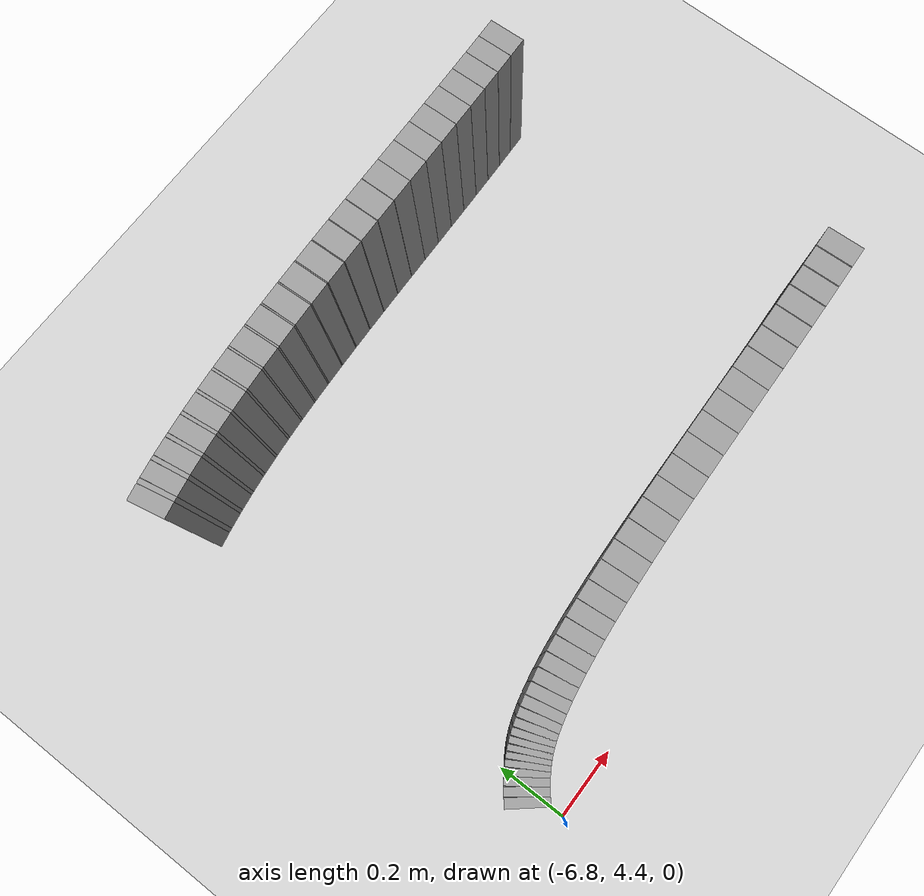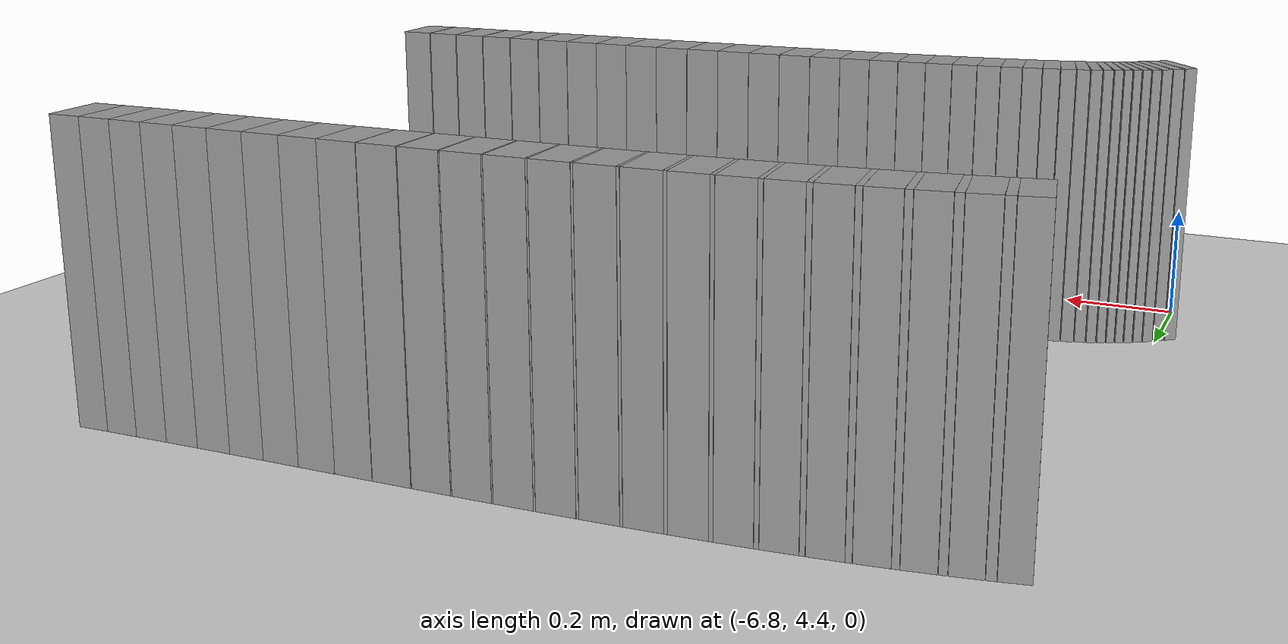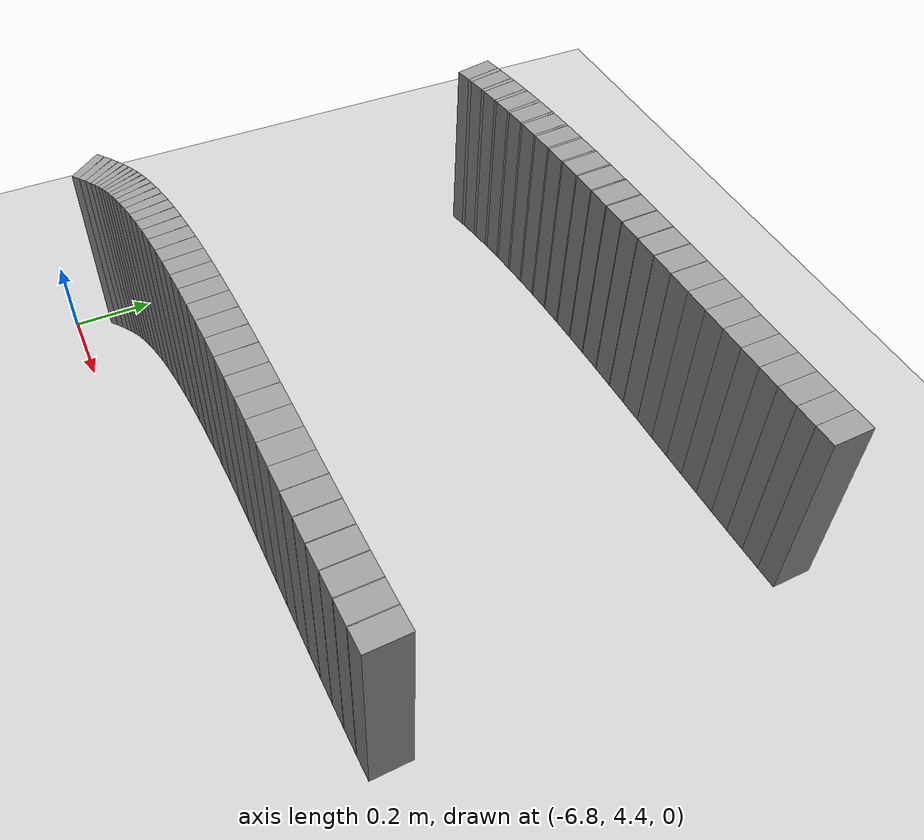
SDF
<sdf version="1.6">
 <world name="default">
  <include><uri>model://ground_plane</uri></include>
  <include><uri>model://sun</uri></include>
  <model name="wall_715_outward">
   <static>true</static>
   <link name="link">
    <collision name="collision">
     <geometry><box><size>0.04427229603714848 0.1 0.5</size></box></geometry>
    </collision>
    <visual name="visual">
     <geometry><box><size>0.04427229603714848 0.1 0.5</size></box></geometry>
     <material>
      <script><uri>file://media/materials/scripts/gazebo.material</uri><name>Gazebo/Gray</name></script>
     </material>
    </visual>
   </link>
   <pose>-6.787782953074644 5.604341420229385 0.25 0 0 0.198122550552777</pose>
  </model>
  <model name="wall_716_outward">
   <static>true</static>
   <link name="link">
    <collision name="collision">
     <geometry><box><size>0.013787778284337651 0.1 0.5</size></box></geometry>
    </collision>
    <visual name="visual">
     <geometry><box><size>0.013787778284337651 0.1 0.5</size></box></geometry>
     <material>
      <script><uri>file://media/materials/scripts/gazebo.material</uri><name>Gazebo/Gray</name></script>
     </material>
    </visual>
   </link>
   <pose>-6.7593027397035135 5.609962051157425 0.25 0 0 0.18433433538181984</pose>
  </model>
  <model name="wall_717_outward">
   <static>true</static>
   <link name="link">
    <collision name="collision">
     <geometry><box><size>0.046217583916477054 0.1 0.5</size></box></geometry>
    </collision>
    <visual name="visual">
     <geometry><box><size>0.046217583916477054 0.1 0.5</size></box></geometry>
     <material>
      <script><uri>file://media/materials/scripts/gazebo.material</uri><name>Gazebo/Gray</name></script>
     </material>
    </visual>
   </link>
   <pose>-6.729752108697234 5.615147684554289 0.25 0 0 0.17054612021079438</pose>
  </model>
  <model name="wall_718_outward">
   <static>true</static>
   <link name="link">
    <collision name="collision">
     <geometry><box><size>0.01206941527639191 0.1 0.5</size></box></geometry>
    </collision>
    <visual name="visual">
     <geometry><box><size>0.01206941527639191 0.1 0.5</size></box></geometry>
     <material>
      <script><uri>file://media/materials/scripts/gazebo.material</uri><name>Gazebo/Gray</name></script>
     </material>
    </visual>
   </link>
   <pose>-6.701019487920215 5.6200220826485054 0.25 0 0 0.15847641188830083</pose>
  </model>
  <model name="wall_719_outward">
   <static>true</static>
   <link name="link">
    <collision name="collision">
     <geometry><box><size>0.04825352106756548 0.1 0.5</size></box></geometry>
    </collision>
    <visual name="visual">
     <geometry><box><size>0.04825352106756548 0.1 0.5</size></box></geometry>
     <material>
      <script><uri>file://media/materials/scripts/gazebo.material</uri><name>Gazebo/Gray</name></script>
     </material>
    </visual>
   </link>
   <pose>-6.671191757510021 5.624494157192439 0.25 0 0 0.14640670356585786</pose>
  </model>
  <model name="wall_720_outward">
   <static>true</static>
   <link name="link">
    <collision name="collision">
     <geometry><box><size>0.010533153233709435 0.1 0.5</size></box></geometry>
    </collision>
    <visual name="visual">
     <geometry><box><size>0.010533153233709435 0.1 0.5</size></box></geometry>
     <material>
      <script><uri>file://media/materials/scripts/gazebo.material</uri><name>Gazebo/Gray</name></script>
     </material>
    </visual>
   </link>
   <pose>-6.642105076319256 5.628727258679284 0.25 0 0 0.13587335555163157</pose>
  </model>
  <model name="wall_721_outward">
   <static>true</static>
   <link name="link">
    <collision name="collision">
     <geometry><box><size>0.05033038747064595 0.1 0.5</size></box></geometry>
    </collision>
    <visual name="visual">
     <geometry><box><size>0.05033038747064595 0.1 0.5</size></box></geometry>
     <material>
      <script><uri>file://media/materials/scripts/gazebo.material</uri><name>Gazebo/Gray</name></script>
     </material>
    </visual>
   </link>
   <pose>-6.611919261274716 5.632586599570962 0.25 0 0 0.12534000753729166</pose>
  </model>
  <model name="wall_722_outward">
   <static>true</static>
   <link name="link">
    <collision name="collision">
     <geometry><box><size>0.009179349550984366 0.1 0.5</size></box></geometry>
    </collision>
    <visual name="visual">
     <geometry><box><size>0.009179349550984366 0.1 0.5</size></box></geometry>
     <material>
      <script><uri>file://media/materials/scripts/gazebo.material</uri><name>Gazebo/Gray</name></script>
     </material>
    </visual>
   </link>
   <pose>-6.582392738238883 5.636264493699098 0.25 0 0 0.11616052907202477</pose>
  </model>
  <model name="wall_723_outward">
   <static>true</static>
   <link name="link">
    <collision name="collision">
     <geometry><box><size>0.052398969915222235 0.1 0.5</size></box></geometry>
    </collision>
    <visual name="visual">
     <geometry><box><size>0.052398969915222235 0.1 0.5</size></box></geometry>
     <material>
      <script><uri>file://media/materials/scripts/gazebo.material</uri><name>Gazebo/Gray</name></script>
     </material>
    </visual>
   </link>
   <pose>-6.55178429145853 5.639593939670187 0.25 0 0 0.10698105060681323</pose>
  </model>
  <model name="wall_724_outward">
   <static>true</static>
   <link name="link">
    <collision name="collision">
     <geometry><box><size>0.007988399667049987 0.1 0.5</size></box></geometry>
    </collision>
    <visual name="visual">
     <geometry><box><size>0.007988399667049987 0.1 0.5</size></box></geometry>
     <material>
      <script><uri>file://media/materials/scripts/gazebo.material</uri><name>Gazebo/Gray</name></script>
     </material>
    </visual>
   </link>
   <pose>-6.521759944225605 5.642786195371538 0.25 0 0 0.09899256597464383</pose>
  </model>
  <model name="wall_725_outward">
   <static>true</static>
   <link name="link">
    <collision name="collision">
     <geometry><box><size>0.05441733789709475 0.1 0.5</size></box></geometry>
    </collision>
    <visual name="visual">
     <geometry><box><size>0.05441733789709475 0.1 0.5</size></box></geometry>
     <material>
      <script><uri>file://media/materials/scripts/gazebo.material</uri><name>Gazebo/Gray</name></script>
     </material>
    </visual>
   </link>
   <pose>-6.490689219967447 5.645653629595952 0.25 0 0 0.09100408134251288</pose>
  </model>
  <model name="wall_726_outward">
   <static>true</static>
   <link name="link">
    <collision name="collision">
     <geometry><box><size>0.006947802980935131 0.1 0.5</size></box></geometry>
    </collision>
    <visual name="visual">
     <geometry><box><size>0.006947802980935131 0.1 0.5</size></box></geometry>
     <material>
      <script><uri>file://media/materials/scripts/gazebo.material</uri><name>Gazebo/Gray</name></script>
     </material>
    </visual>
   </link>
   <pose>-6.460131504504256 5.6484179724985495 0.25 0 0 0.08405622246298476</pose>
  </model>
  <model name="wall_727_outward">
   <static>true</static>
   <link name="link">
    <collision name="collision">
     <geometry><box><size>0.05634449241526085 0.1 0.5</size></box></geometry>
    </collision>
    <visual name="visual">
     <geometry><box><size>0.05634449241526085 0.1 0.5</size></box></geometry>
     <material>
      <script><uri>file://media/materials/scripts/gazebo.material</uri><name>Gazebo/Gray</name></script>
     </material>
    </visual>
   </link>
   <pose>-6.428581332287833 5.650879795588251 0.25 0 0 0.07710836358350967</pose>
  </model>
  <model name="wall_728_outward">
   <static>true</static>
   <link name="link">
    <collision name="collision">
     <geometry><box><size>0.006025924859365051 0.1 0.5</size></box></geometry>
    </collision>
    <visual name="visual">
     <geometry><box><size>0.006025924859365051 0.1 0.5</size></box></geometry>
     <material>
      <script><uri>file://media/materials/scripts/gazebo.material</uri><name>Gazebo/Gray</name></script>
     </material>
    </visual>
   </link>
   <pose>-6.397487442625263 5.653263947673134 0.25 0 0 0.07108240225490636</pose>
  </model>
  <model name="wall_729_outward">
   <static>true</static>
   <link name="link">
    <collision name="collision">
     <geometry><box><size>0.058145021774287216 0.1 0.5</size></box></geometry>
    </collision>
    <visual name="visual">
     <geometry><box><size>0.058145021774287216 0.1 0.5</size></box></geometry>
     <material>
      <script><uri>file://media/materials/scripts/gazebo.material</uri><name>Gazebo/Gray</name></script>
     </material>
    </visual>
   </link>
   <pose>-6.365471078600647 5.65536795619785 0.25 0 0 0.06505644092625447</pose>
  </model>
  <model name="wall_730_outward">
   <static>true</static>
   <link name="link">
    <collision name="collision">
     <geometry><box><size>0.005192283801423653 0.1 0.5</size></box></geometry>
    </collision>
    <visual name="visual">
     <geometry><box><size>0.005192283801423653 0.1 0.5</size></box></geometry>
     <material>
      <script><uri>file://media/materials/scripts/gazebo.material</uri><name>Gazebo/Gray</name></script>
     </material>
    </visual>
   </link>
   <pose>-6.333868577026543 5.657413299399926 0.25 0 0 0.059864133794016575</pose>
  </model>
  <model name="wall_731_outward">
   <static>true</static>
   <link name="link">
    <collision name="collision">
     <geometry><box><size>0.05978669657818748 0.1 0.5</size></box></geometry>
    </collision>
    <visual name="visual">
     <geometry><box><size>0.05978669657818748 0.1 0.5</size></box></geometry>
     <material>
      <script><uri>file://media/materials/scripts/gazebo.material</uri><name>Gazebo/Gray</name></script>
     </material>
    </visual>
   </link>
   <pose>-6.301428401974459 5.65920213228462 0.25 0 0 0.0546718266618442</pose>
  </model>
  <model name="wall_732_outward">
   <static>true</static>
   <link name="link">
    <collision name="collision">
     <geometry><box><size>0.004442531219801007 0.1 0.5</size></box></geometry>
    </collision>
    <visual name="visual">
     <geometry><box><size>0.004442531219801007 0.1 0.5</size></box></geometry>
     <material>
      <script><uri>file://media/materials/scripts/gazebo.material</uri><name>Gazebo/Gray</name></script>
     </material>
    </visual>
   </link>
   <pose>-6.269361254202566 5.66094716785835 0.25 0 0 0.05022928082883893</pose>
  </model>
  <model name="wall_733_outward">
   <static>true</static>
   <link name="link">
    <collision name="collision">
     <geometry><box><size>0.06123896067028324 0.1 0.5</size></box></geometry>
    </collision>
    <visual name="visual">
     <geometry><box><size>0.06123896067028324 0.1 0.5</size></box></geometry>
     <material>
      <script><uri>file://media/materials/scripts/gazebo.material</uri><name>Gazebo/Gray</name></script>
     </material>
    </visual>
   </link>
   <pose>-6.236555399890301 5.662460169752841 0.25 0 0 0.0457867349959278</pose>
  </model>
  <model name="wall_734_outward">
   <static>true</static>
   <link name="link">
    <collision name="collision">
     <geometry><box><size>0.0037468226656922755 0.1 0.5</size></box></geometry>
    </collision>
    <visual name="visual">
     <geometry><box><size>0.0037468226656922755 0.1 0.5</size></box></geometry>
     <material>
      <script><uri>file://media/materials/scripts/gazebo.material</uri><name>Gazebo/Gray</name></script>
     </material>
    </visual>
   </link>
   <pose>-6.204096253585327 5.663940380818144 0.25 0 0 0.042039903563492555</pose>
  </model>
  <model name="wall_735_outward">
   <static>true</static>
   <link name="link">
    <collision name="collision">
     <geometry><box><size>0.0624744215207278 0.1 0.5</size></box></geometry>
    </collision>
    <visual name="visual">
     <geometry><box><size>0.0624744215207278 0.1 0.5</size></box></geometry>
     <material>
      <script><uri>file://media/materials/scripts/gazebo.material</uri><name>Gazebo/Gray</name></script>
     </material>
    </visual>
   </link>
   <pose>-6.171010186428267 5.665214992103784 0.25 0 0 0.03829307213094997</pose>
  </model>
  <model name="wall_736_outward">
   <static>true</static>
   <link name="link">
    <collision name="collision">
     <geometry><box><size>0.0030970406497633973 0.1 0.5</size></box></geometry>
    </collision>
    <visual name="visual">
     <geometry><box><size>0.0030970406497633973 0.1 0.5</size></box></geometry>
     <material>
      <script><uri>file://media/materials/scripts/gazebo.material</uri><name>Gazebo/Gray</name></script>
     </material>
    </visual>
   </link>
   <pose>-6.13824831405668 5.6664653590651834 0.25 0 0 0.03519602653036827</pose>
  </model>
  <model name="wall_737_outward">
   <static>true</static>
   <link name="link">
    <collision name="collision">
     <geometry><box><size>0.06347094053283751 0.1 0.5</size></box></geometry>
    </collision>
    <visual name="visual">
     <geometry><box><size>0.06347094053283751 0.1 0.5</size></box></geometry>
     <material>
      <script><uri>file://media/materials/scripts/gazebo.material</uri><name>Gazebo/Gray</name></script>
     </material>
    </visual>
   </link>
   <pose>-6.104981630320221 5.6675383509085036 0.25 0 0 0.03209898092945859</pose>
  </model>
  <model name="wall_738_outward">
   <static>true</static>
   <link name="link">
    <collision name="collision">
     <geometry><box><size>0.0024808707593398996 0.1 0.5</size></box></geometry>
    </collision>
    <visual name="visual">
     <geometry><box><size>0.0024808707593398996 0.1 0.5</size></box></geometry>
     <material>
      <script><uri>file://media/materials/scripts/gazebo.material</uri><name>Gazebo/Gray</name></script>
     </material>
    </visual>
   </link>
   <pose>-6.072022616540458 5.6685935862184476 0.25 0 0 0.029618107625158673</pose>
  </model>
  <model name="wall_739_outward">
   <static>true</static>
   <link name="link">
    <collision name="collision">
     <geometry><box><size>0.06420774419207387 0.1 0.5</size></box></geometry>
    </collision>
    <visual name="visual">
     <geometry><box><size>0.06420774419207387 0.1 0.5</size></box></geometry>
     <material>
      <script><uri>file://media/materials/scripts/gazebo.material</uri><name>Gazebo/Gray</name></script>
     </material>
    </visual>
   </link>
   <pose>-6.038690673493559 5.6695014235685655 0.25 0 0 0.027137234321077647</pose>
  </model>
  <model name="wall_740_outward">
   <static>true</static>
   <link name="link">
    <collision name="collision">
     <geometry><box><size>0.0018974911223932885 0.1 0.5</size></box></geometry>
    </collision>
    <visual name="visual">
     <geometry><box><size>0.0018974911223932885 0.1 0.5</size></box></geometry>
     <material>
      <script><uri>file://media/materials/scripts/gazebo.material</uri><name>Gazebo/Gray</name></script>
     </material>
    </visual>
   </link>
   <pose>-6.00565017841048 5.670396470492232 0.25 0 0 0.02523974205997937</pose>
  </model>
  <model name="wall_741_outward">
   <static>true</static>
   <link name="link">
    <collision name="collision">
     <geometry><box><size>0.06467200625841027 0.1 0.5</size></box></geometry>
    </collision>
    <visual name="visual">
     <geometry><box><size>0.06467200625841027 0.1 0.5</size></box></geometry>
     <material>
      <script><uri>file://media/materials/scripts/gazebo.material</uri><name>Gazebo/Gray</name></script>
     </material>
    </visual>
   </link>
   <pose>-5.972374540808113 5.671175140564496 0.25 0 0 0.023342249798999126</pose>
  </model>
  <model name="wall_742_outward">
   <static>true</static>
   <link name="link">
    <collision name="collision">
     <geometry><box><size>0.0013407539265913114 0.1 0.5</size></box></geometry>
    </collision>
    <visual name="visual">
     <geometry><box><size>0.0013407539265913114 0.1 0.5</size></box></geometry>
     <material>
      <script><uri>file://media/materials/scripts/gazebo.material</uri><name>Gazebo/Gray</name></script>
     </material>
    </visual>
   </link>
   <pose>-5.939377131869817 5.6719446151917 0.25 0 0 0.022001495470720913</pose>
  </model>
  <model name="wall_743_outward">
   <static>true</static>
   <link name="link">
    <collision name="collision">
     <geometry><box><size>0.06485729441659203 0.1 0.5</size></box></geometry>
    </collision>
    <visual name="visual">
     <geometry><box><size>0.06485729441659203 0.1 0.5</size></box></geometry>
     <material>
      <script><uri>file://media/materials/scripts/gazebo.material</uri><name>Gazebo/Gray</name></script>
     </material>
    </visual>
   </link>
   <pose>-5.906285191045859 5.672629315517379 0.25 0 0 0.020660741142426546</pose>
  </model>
  <model name="wall_744_outward">
   <static>true</static>
   <link name="link">
    <collision name="collision">
     <geometry><box><size>0.00080312846641992 0.1 0.5</size></box></geometry>
    </collision>
    <visual name="visual">
     <geometry><box><size>0.00080312846641992 0.1 0.5</size></box></geometry>
     <material>
      <script><uri>file://media/materials/scripts/gazebo.material</uri><name>Gazebo/Gray</name></script>
     </material>
    </visual>
   </link>
   <pose>-5.873461979876011 5.673307241320165 0.25 0 0 0.0198576125901557</pose>
  </model>
  <model name="wall_745_outward">
   <static>true</static>
   <link name="link">
    <collision name="collision">
     <geometry><box><size>0.06476545336809227 0.1 0.5</size></box></geometry>
    </collision>
    <visual name="visual">
     <geometry><box><size>0.06476545336809227 0.1 0.5</size></box></geometry>
     <material>
      <script><uri>file://media/materials/scripts/gazebo.material</uri><name>Gazebo/Gray</name></script>
     </material>
    </visual>
   </link>
   <pose>-5.8406836466043766 5.6739322137142025 0.25 0 0 0.019054484036909573</pose>
  </model>
  <model name="wall_746_outward">
   <static>true</static>
   <link name="link">
    <collision name="collision">
     <geometry><box><size>0.06459310264427841 0.1 0.5</size></box></geometry>
    </collision>
    <visual name="visual">
     <geometry><box><size>0.06459310264427841 0.1 0.5</size></box></geometry>
     <material>
      <script><uri>file://media/materials/scripts/gazebo.material</uri><name>Gazebo/Gray</name></script>
     </material>
    </visual>
   </link>
   <pose>-5.776015764338239 5.675146160459743 0.25 0 0 0.01848438625145726</pose>
  </model>
  <model name="wall_747_outward">
   <static>true</static>
   <link name="link">
    <collision name="collision">
     <geometry><box><size>0.06337656750366784 0.1 0.5</size></box></geometry>
    </collision>
    <visual name="visual">
     <geometry><box><size>0.06337656750366784 0.1 0.5</size></box></geometry>
     <material>
      <script><uri>file://media/materials/scripts/gazebo.material</uri><name>Gazebo/Gray</name></script>
     </material>
    </visual>
   </link>
   <pose>-5.712042101851692 5.6763417593181975 0.25 0 0 0.018892993526199914</pose>
  </model>
  <model name="wall_748_outward">
   <static>true</static>
   <link name="link">
    <collision name="collision">
     <geometry><box><size>0.062133759978101576 0.1 0.5</size></box></geometry>
    </collision>
    <visual name="visual">
     <geometry><box><size>0.062133759978101576 0.1 0.5</size></box></geometry>
     <material>
      <script><uri>file://media/materials/scripts/gazebo.material</uri><name>Gazebo/Gray</name></script>
     </material>
    </visual>
   </link>
   <pose>-5.649298950762556 5.67756887215067 0.25 0 0 0.02023070164508726</pose>
  </model>
  <model name="wall_749_outward">
   <static>true</static>
   <link name="link">
    <collision name="collision">
     <geometry><box><size>0.06077717741691217 0.1 0.5</size></box></geometry>
    </collision>
    <visual name="visual">
     <geometry><box><size>0.06077717741691217 0.1 0.5</size></box></geometry>
     <material>
      <script><uri>file://media/materials/scripts/gazebo.material</uri><name>Gazebo/Gray</name></script>
     </material>
    </visual>
   </link>
   <pose>-5.587857464327748 5.678878042350173 0.25 0 0 0.022402002161792868</pose>
  </model>
  <model name="wall_750_outward">
   <static>true</static>
   <link name="link">
    <collision name="collision">
     <geometry><box><size>0.0593644005096636 0.1 0.5</size></box></geometry>
    </collision>
    <visual name="visual">
     <geometry><box><size>0.0593644005096636 0.1 0.5</size></box></geometry>
     <material>
      <script><uri>file://media/materials/scripts/gazebo.material</uri><name>Gazebo/Gray</name></script>
     </material>
    </visual>
   </link>
   <pose>-5.527803801910203 5.680309728172557 0.25 0 0 0.0253033018881677</pose>
  </model>
  <model name="wall_751_outward">
   <static>true</static>
   <link name="link">
    <collision name="collision">
     <geometry><box><size>0.05797755895982086 0.1 0.5</size></box></geometry>
    </collision>
    <visual name="visual">
     <geometry><box><size>0.05797755895982086 0.1 0.5</size></box></geometry>
     <material>
      <script><uri>file://media/materials/scripts/gazebo.material</uri><name>Gazebo/Gray</name></script>
     </material>
    </visual>
   </link>
   <pose>-5.46915435480477 5.6818958010504605 0.25 0 0 0.028811523242423698</pose>
  </model>
  <model name="wall_752_outward">
   <static>true</static>
   <link name="link">
    <collision name="collision">
     <geometry><box><size>0.05669731627469313 0.1 0.5</size></box></geometry>
    </collision>
    <visual name="visual">
     <geometry><box><size>0.05669731627469313 0.1 0.5</size></box></geometry>
     <material>
      <script><uri>file://media/materials/scripts/gazebo.material</uri><name>Gazebo/Gray</name></script>
     </material>
    </visual>
   </link>
   <pose>-5.411844113083832 5.683658030691181 0.25 0 0 0.032710530634604974</pose>
  </model>
  <model name="wall_753_outward">
   <static>true</static>
   <link name="link">
    <collision name="collision">
     <geometry><box><size>0.055587608800951524 0.1 0.5</size></box></geometry>
    </collision>
    <visual name="visual">
     <geometry><box><size>0.055587608800951524 0.1 0.5</size></box></geometry>
     <material>
      <script><uri>file://media/materials/scripts/gazebo.material</uri><name>Gazebo/Gray</name></script>
     </material>
    </visual>
   </link>
   <pose>-5.355735606155399 5.685607015584503 0.25 0 0 0.036773697105748085</pose>
  </model>
  <model name="wall_436_inward">
   <static>true</static>
   <link name="link">
    <collision name="collision">
     <geometry><box><size>0.023033971195744764 0.1 0.5</size></box></geometry>
    </collision>
    <visual name="visual">
     <geometry><box><size>0.023033971195744764 0.1 0.5</size></box></geometry>
     <material>
      <script><uri>file://media/materials/scripts/gazebo.material</uri><name>Gazebo/Gray</name></script>
     </material>
    </visual>
   </link>
   <pose>-6.791422721273946 4.53275799636075 0.25 0 0 0.6940031108437864</pose>
  </model>
  <model name="wall_437_inward">
   <static>true</static>
   <link name="link">
    <collision name="collision">
     <geometry><box><size>0.020742308365236817 0.1 0.5</size></box></geometry>
    </collision>
    <visual name="visual">
     <geometry><box><size>0.020742308365236817 0.1 0.5</size></box></geometry>
     <material>
      <script><uri>file://media/materials/scripts/gazebo.material</uri><name>Gazebo/Gray</name></script>
     </material>
    </visual>
   </link>
   <pose>-6.774355513484021 4.5464559784625935 0.25 0 0 0.6566800989822641</pose>
  </model>
  <model name="wall_438_inward">
   <static>true</static>
   <link name="link">
    <collision name="collision">
     <geometry><box><size>0.01847377192516463 0.1 0.5</size></box></geometry>
    </collision>
    <visual name="visual">
     <geometry><box><size>0.01847377192516463 0.1 0.5</size></box></geometry>
     <material>
      <script><uri>file://media/materials/scripts/gazebo.material</uri><name>Gazebo/Gray</name></script>
     </material>
    </visual>
   </link>
   <pose>-6.758607382185916 4.558131617623058 0.25 0 0 0.6169690517355636</pose>
  </model>
  <model name="wall_439_inward">
   <static>true</static>
   <link name="link">
    <collision name="collision">
     <geometry><box><size>0.01643014109773876 0.1 0.5</size></box></geometry>
    </collision>
    <visual name="visual">
     <geometry><box><size>0.01643014109773876 0.1 0.5</size></box></geometry>
     <material>
      <script><uri>file://media/materials/scripts/gazebo.material</uri><name>Gazebo/Gray</name></script>
     </material>
    </visual>
   </link>
   <pose>-6.744178317387382 4.567941696903582 0.25 0 0 0.5747524104182197</pose>
  </model>
  <model name="wall_440_inward">
   <static>true</static>
   <link name="link">
    <collision name="collision">
     <geometry><box><size>0.014852313597868058 0.1 0.5</size></box></geometry>
    </collision>
    <visual name="visual">
     <geometry><box><size>0.014852313597868058 0.1 0.5</size></box></geometry>
     <material>
      <script><uri>file://media/materials/scripts/gazebo.material</uri><name>Gazebo/Gray</name></script>
     </material>
    </visual>
   </link>
   <pose>-6.730876731292756 4.576163309925279 0.25 0 0 0.5302355298545512</pose>
  </model>
  <model name="wall_441_inward">
   <static>true</static>
   <link name="link">
    <collision name="collision">
     <geometry><box><size>0.013970199412113728 0.1 0.5</size></box></geometry>
    </collision>
    <visual name="visual">
     <geometry><box><size>0.013970199412113728 0.1 0.5</size></box></geometry>
     <material>
      <script><uri>file://media/materials/scripts/gazebo.material</uri><name>Gazebo/Gray</name></script>
     </material>
    </visual>
   </link>
   <pose>-6.718287622342446 4.583169592255391 0.25 0 0 0.48404411498353633</pose>
  </model>
  <model name="wall_442_inward">
   <static>true</static>
   <link name="link">
    <collision name="collision">
     <geometry><box><size>0.01394453255703199 0.1 0.5</size></box></geometry>
    </collision>
    <visual name="visual">
     <geometry><box><size>0.01394453255703199 0.1 0.5</size></box></geometry>
     <material>
      <script><uri>file://media/materials/scripts/gazebo.material</uri><name>Gazebo/Gray</name></script>
     </material>
    </visual>
   </link>
   <pose>-6.705788292124403 4.58937181948028 0.25 0 0 0.43712636723239795</pose>
  </model>
  <model name="wall_443_inward">
   <static>true</static>
   <link name="link">
    <collision name="collision">
     <geometry><box><size>0.014851098218611001 0.1 0.5</size></box></geometry>
    </collision>
    <visual name="visual">
     <geometry><box><size>0.014851098218611001 0.1 0.5</size></box></geometry>
     <material>
      <script><uri>file://media/materials/scripts/gazebo.material</uri><name>Gazebo/Gray</name></script>
     </material>
    </visual>
   </link>
   <pose>-6.6926054276015075 4.5951508545825 0.25 0 0 0.39062669869546635</pose>
  </model>
  <model name="wall_444_inward">
   <static>true</static>
   <link name="link">
    <collision name="collision">
     <geometry><box><size>0.01664969024967799 0.1 0.5</size></box></geometry>
    </collision>
    <visual name="visual">
     <geometry><box><size>0.01664969024967799 0.1 0.5</size></box></geometry>
     <material>
      <script><uri>file://media/materials/scripts/gazebo.material</uri><name>Gazebo/Gray</name></script>
     </material>
    </visual>
   </link>
   <pose>-6.677907025104371 4.6007995152279335 0.25 0 0 0.3457422645974469</pose>
  </model>
  <model name="wall_445_inward">
   <static>true</static>
   <link name="link">
    <collision name="collision">
     <geometry><box><size>0.019211035893590408 0.1 0.5</size></box></geometry>
    </collision>
    <visual name="visual">
     <geometry><box><size>0.019211035893590408 0.1 0.5</size></box></geometry>
     <material>
      <script><uri>file://media/materials/scripts/gazebo.material</uri><name>Gazebo/Gray</name></script>
     </material>
    </visual>
   </link>
   <pose>-6.660908209363047 4.606491202469996 0.25 0 0 0.3034686879627299</pose>
  </model>
  <model name="wall_446_inward">
   <static>true</static>
   <link name="link">
    <collision name="collision">
     <geometry><box><size>0.022349276903974535 0.1 0.5</size></box></geometry>
    </collision>
    <visual name="visual">
     <geometry><box><size>0.022349276903974535 0.1 0.5</size></box></geometry>
     <material>
      <script><uri>file://media/materials/scripts/gazebo.material</uri><name>Gazebo/Gray</name></script>
     </material>
    </visual>
   </link>
   <pose>-6.640955768012656 4.61228365638817 0.25 0 0 0.2645618635066466</pose>
  </model>
  <model name="wall_447_inward">
   <static>true</static>
   <link name="link">
    <collision name="collision">
     <geometry><box><size>0.02585957115728218 0.1 0.5</size></box></geometry>
    </collision>
    <visual name="visual">
     <geometry><box><size>0.02585957115728218 0.1 0.5</size></box></geometry>
     <material>
      <script><uri>file://media/materials/scripts/gazebo.material</uri><name>Gazebo/Gray</name></script>
     </material>
    </visual>
   </link>
   <pose>-6.617578889734212 4.6181459336832305 0.25 0 0 0.22940912703244903</pose>
  </model>
  <model name="wall_448_inward">
   <static>true</static>
   <link name="link">
    <collision name="collision">
     <geometry><box><size>0.029555469327267034 0.1 0.5</size></box></geometry>
    </collision>
    <visual name="visual">
     <geometry><box><size>0.029555469327267034 0.1 0.5</size></box></geometry>
     <material>
      <script><uri>file://media/materials/scripts/gazebo.material</uri><name>Gazebo/Gray</name></script>
     </material>
    </visual>
   </link>
   <pose>-6.590499202220055 4.623994881079555 0.25 0 0 0.19812255055276615</pose>
  </model>
  <model name="wall_449_inward">
   <static>true</static>
   <link name="link">
    <collision name="collision">
     <geometry><box><size>0.03328789218045506 0.1 0.5</size></box></geometry>
    </collision>
    <visual name="visual">
     <geometry><box><size>0.03328789218045506 0.1 0.5</size></box></geometry>
     <material>
      <script><uri>file://media/materials/scripts/gazebo.material</uri><name>Gazebo/Gray</name></script>
     </material>
    </visual>
   </link>
   <pose>-6.559608072454681 4.629728387213296 0.25 0 0 0.17054612021080456</pose>
  </model>
  <model name="wall_450_inward">
   <static>true</static>
   <link name="link">
    <collision name="collision">
     <geometry><box><size>0.03695150504356176 0.1 0.5</size></box></geometry>
    </collision>
    <visual name="visual">
     <geometry><box><size>0.03695150504356176 0.1 0.5</size></box></geometry>
     <material>
      <script><uri>file://media/materials/scripts/gazebo.material</uri><name>Gazebo/Gray</name></script>
     </material>
    </visual>
   </link>
   <pose>-6.52492750016817 4.635248528146157 0.25 0 0 0.14640670356584948</pose>
  </model>
  <model name="wall_451_inward">
   <static>true</static>
   <link name="link">
    <collision name="collision">
     <geometry><box><size>0.04047365052148544 0.1 0.5</size></box></geometry>
    </collision>
    <visual name="visual">
     <geometry><box><size>0.04047365052148544 0.1 0.5</size></box></geometry>
     <material>
      <script><uri>file://media/materials/scripts/gazebo.material</uri><name>Gazebo/Gray</name></script>
     </material>
    </visual>
   </link>
   <pose>-6.486571335555055 4.640473696671171 0.25 0 0 0.12534000753729896</pose>
  </model>
  <model name="wall_452_inward">
   <static>true</static>
   <link name="link">
    <collision name="collision">
     <geometry><box><size>0.04381477447983942 0.1 0.5</size></box></geometry>
    </collision>
    <visual name="visual">
     <geometry><box><size>0.04381477447983942 0.1 0.5</size></box></geometry>
     <material>
      <script><uri>file://media/materials/scripts/gazebo.material</uri><name>Gazebo/Gray</name></script>
     </material>
    </visual>
   </link>
   <pose>-6.44471112140894 4.64534275162827 0.25 0 0 0.10698105060682006</pose>
  </model>
  <model name="wall_453_inward">
   <static>true</static>
   <link name="link">
    <collision name="collision">
     <geometry><box><size>0.04694902527395211 0.1 0.5</size></box></geometry>
    </collision>
    <visual name="visual">
     <geometry><box><size>0.04694902527395211 0.1 0.5</size></box></geometry>
     <material>
      <script><uri>file://media/materials/scripts/gazebo.material</uri><name>Gazebo/Gray</name></script>
     </material>
    </visual>
   </link>
   <pose>-6.399551604306245 4.649815287945799 0.25 0 0 0.09100408134251727</pose>
  </model>
  <model name="wall_454_inward">
   <static>true</static>
   <link name="link">
    <collision name="collision">
     <geometry><box><size>0.049857489941531156 0.1 0.5</size></box></geometry>
    </collision>
    <visual name="visual">
     <geometry><box><size>0.049857489941531156 0.1 0.5</size></box></geometry>
     <material>
      <script><uri>file://media/materials/scripts/gazebo.material</uri><name>Gazebo/Gray</name></script>
     </material>
    </visual>
   </link>
   <pose>-6.3513195572738415 4.653868927420502 0.25 0 0 0.0771083635834944</pose>
  </model>
  <model name="wall_455_inward">
   <static>true</static>
   <link name="link">
    <collision name="collision">
     <geometry><box><size>0.052535827742976965 0.1 0.5</size></box></geometry>
    </collision>
    <visual name="visual">
     <geometry><box><size>0.052535827742976965 0.1 0.5</size></box></geometry>
     <material>
      <script><uri>file://media/materials/scripts/gazebo.material</uri><name>Gazebo/Gray</name></script>
     </material>
    </visual>
   </link>
   <pose>-6.300252538910996 4.657496929702093 0.25 0 0 0.06505644092626817</pose>
  </model>
  <model name="wall_456_inward">
   <static>true</static>
   <link name="link">
    <collision name="collision">
     <geometry><box><size>0.05496923215126055 0.1 0.5</size></box></geometry>
    </collision>
    <visual name="visual">
     <geometry><box><size>0.05496923215126055 0.1 0.5</size></box></geometry>
     <material>
      <script><uri>file://media/materials/scripts/gazebo.material</uri><name>Gazebo/Gray</name></script>
     </material>
    </visual>
   </link>
   <pose>-6.246596642386196 4.66070650721861 0.25 0 0 0.05467182666183468</pose>
  </model>
  <model name="wall_457_inward">
   <static>true</static>
   <link name="link">
    <collision name="collision">
     <geometry><box><size>0.057144248657370354 0.1 0.5</size></box></geometry>
    </collision>
    <visual name="visual">
     <geometry><box><size>0.057144248657370354 0.1 0.5</size></box></geometry>
     <material>
      <script><uri>file://media/materials/scripts/gazebo.material</uri><name>Gazebo/Gray</name></script>
     </material>
    </visual>
   </link>
   <pose>-6.190610912056304 4.663516160165795 0.25 0 0 0.045786734995937724</pose>
  </model>
  <model name="wall_458_inward">
   <static>true</static>
   <link name="link">
    <collision name="collision">
     <geometry><box><size>0.05905246928620108 0.1 0.5</size></box></geometry>
    </collision>
    <visual name="visual">
     <geometry><box><size>0.05905246928620108 0.1 0.5</size></box></geometry>
     <material>
      <script><uri>file://media/materials/scripts/gazebo.material</uri><name>Gazebo/Gray</name></script>
     </material>
    </visual>
   </link>
   <pose>-6.132564142902215 4.665954301329518 0.25 0 0 0.03829307213094603</pose>
  </model>
  <model name="wall_459_inward">
   <static>true</static>
   <link name="link">
    <collision name="collision">
     <geometry><box><size>0.060681973584644465 0.1 0.5</size></box></geometry>
    </collision>
    <visual name="visual">
     <geometry><box><size>0.060681973584644465 0.1 0.5</size></box></geometry>
     <material>
      <script><uri>file://media/materials/scripts/gazebo.material</uri><name>Gazebo/Gray</name></script>
     </material>
    </visual>
   </link>
   <pose>-6.0727341963506145 4.668058422779872 0.25 0 0 0.032098980929462485</pose>
  </model>
  <model name="wall_460_inward">
   <static>true</static>
   <link name="link">
    <collision name="collision">
     <geometry><box><size>0.06201855772592783 0.1 0.5</size></box></geometry>
    </collision>
    <visual name="visual">
     <geometry><box><size>0.06201855772592783 0.1 0.5</size></box></geometry>
     <material>
      <script><uri>file://media/materials/scripts/gazebo.material</uri><name>Gazebo/Gray</name></script>
     </material>
    </visual>
   </link>
   <pose>-6.011410977561832 4.669873573085738 0.25 0 0 0.0271372343210715</pose>
  </model>
  <model name="wall_461_inward">
   <static>true</static>
   <link name="link">
    <collision name="collision">
     <geometry><box><size>0.06305288142337082 0.1 0.5</size></box></geometry>
    </collision>
    <visual name="visual">
     <geometry><box><size>0.06305288142337082 0.1 0.5</size></box></geometry>
     <material>
      <script><uri>file://media/materials/scripts/gazebo.material</uri><name>Gazebo/Gray</name></script>
     </material>
    </visual>
   </link>
   <pose>-5.948895263728279 4.6714508071004 0.25 0 0 0.02334224979899802</pose>
  </model>
  <model name="wall_462_inward">
   <static>true</static>
   <link name="link">
    <collision name="collision">
     <geometry><box><size>0.0637853524877965 0.1 0.5</size></box></geometry>
    </collision>
    <visual name="visual">
     <geometry><box><size>0.0637853524877965 0.1 0.5</size></box></geometry>
     <material>
      <script><uri>file://media/materials/scripts/gazebo.material</uri><name>Gazebo/Gray</name></script>
     </material>
    </visual>
   </link>
   <pose>-5.8854915418518505 4.672845517779923 0.25 0 0 0.020660741142433842</pose>
  </model>
  <model name="wall_463_inward">
   <static>true</static>
   <link name="link">
    <collision name="collision">
     <geometry><box><size>0.06422104868129556 0.1 0.5</size></box></geometry>
    </collision>
    <visual name="visual">
     <geometry><box><size>0.06422104868129556 0.1 0.5</size></box></geometry>
     <material>
      <script><uri>file://media/materials/scripts/gazebo.material</uri><name>Gazebo/Gray</name></script>
     </material>
    </visual>
   </link>
   <pose>-5.821500977039964 4.674116209680003 0.25 0 0 0.01905448403689674</pose>
  </model>
  <model name="wall_464_inward">
   <static>true</static>
   <link name="link">
    <collision name="collision">
     <geometry><box><size>0.06447198476804078 0.1 0.5</size></box></geometry>
    </collision>
    <visual name="visual">
     <geometry><box><size>0.06447198476804078 0.1 0.5</size></box></geometry>
     <material>
      <script><uri>file://media/materials/scripts/gazebo.material</uri><name>Gazebo/Gray</name></script>
     </material>
    </visual>
   </link>
   <pose>-5.757165795932073 4.6753238310055565 0.25 0 0 0.018483774173486876</pose>
  </model>
  <model name="wall_465_inward">
   <static>true</static>
   <link name="link">
    <collision name="collision">
     <geometry><box><size>0.06381346227815973 0.1 0.5</size></box></geometry>
    </collision>
    <visual name="visual">
     <geometry><box><size>0.06381346227815973 0.1 0.5</size></box></geometry>
     <material>
      <script><uri>file://media/materials/scripts/gazebo.material</uri><name>Gazebo/Gray</name></script>
     </material>
    </visual>
   </link>
   <pose>-5.693034273272056 4.676522417684932 0.25 0 0 0.01889299352619353</pose>
  </model>
  <model name="wall_466_inward">
   <static>true</static>
   <link name="link">
    <collision name="collision">
     <geometry><box><size>0.0006688540095785354 0.1 0.5</size></box></geometry>
    </collision>
    <visual name="visual">
     <geometry><box><size>0.0006688540095785354 0.1 0.5</size></box></geometry>
     <material>
      <script><uri>file://media/materials/scripts/gazebo.material</uri><name>Gazebo/Gray</name></script>
     </material>
    </visual>
   </link>
   <pose>-5.660798873420999 4.677131737081387 0.25 0 0 0.019561847585263508</pose>
  </model>
  <model name="wall_467_inward">
   <static>true</static>
   <link name="link">
    <collision name="collision">
     <geometry><box><size>0.06301101240005838 0.1 0.5</size></box></geometry>
    </collision>
    <visual name="visual">
     <geometry><box><size>0.06301101240005838 0.1 0.5</size></box></geometry>
     <material>
      <script><uri>file://media/materials/scripts/gazebo.material</uri><name>Gazebo/Gray</name></script>
     </material>
    </visual>
   </link>
   <pose>-5.628965451288243 4.6777756136934086 0.25 0 0 0.020230701645090325</pose>
  </model>
  <model name="wall_468_inward">
   <static>true</static>
   <link name="link">
    <collision name="collision">
     <geometry><box><size>0.0010856500450853238 0.1 0.5</size></box></geometry>
    </collision>
    <visual name="visual">
     <geometry><box><size>0.0010856500450853238 0.1 0.5</size></box></geometry>
     <material>
      <script><uri>file://media/materials/scripts/gazebo.material</uri><name>Gazebo/Gray</name></script>
     </material>
    </visual>
   </link>
   <pose>-5.5969236904744815 4.678424518885493 0.25 0 0 0.021316351903217495</pose>
  </model>
  <model name="wall_469_inward">
   <static>true</static>
   <link name="link">
    <collision name="collision">
     <geometry><box><size>0.0620453281995741 0.1 0.5</size></box></geometry>
    </collision>
    <visual name="visual">
     <geometry><box><size>0.0620453281995741 0.1 0.5</size></box></geometry>
     <material>
      <script><uri>file://media/materials/scripts/gazebo.material</uri><name>Gazebo/Gray</name></script>
     </material>
    </visual>
   </link>
   <pose>-5.565366108705566 4.679131000719717 0.25 0 0 0.022402002161790117</pose>
  </model>
  <model name="wall_470_inward">
   <static>true</static>
   <link name="link">
    <collision name="collision">
     <geometry><box><size>0.001450649354401391 0.1 0.5</size></box></geometry>
    </collision>
    <visual name="visual">
     <geometry><box><size>0.001450649354401391 0.1 0.5</size></box></geometry>
     <material>
      <script><uri>file://media/materials/scripts/gazebo.material</uri><name>Gazebo/Gray</name></script>
     </material>
    </visual>
   </link>
   <pose>-5.533626110286981 4.6798432116576265 0.25 0 0 0.023852652025077296</pose>
  </model>
  <model name="wall_471_inward">
   <static>true</static>
   <link name="link">
    <collision name="collision">
     <geometry><box><size>0.06096678218809616 0.1 0.5</size></box></geometry>
    </collision>
    <visual name="visual">
     <geometry><box><size>0.06096678218809616 0.1 0.5</size></box></geometry>
     <material>
      <script><uri>file://media/materials/scripts/gazebo.material</uri><name>Gazebo/Gray</name></script>
     </material>
    </visual>
   </link>
   <pose>-5.502427358925254 4.680631759076013 0.25 0 0 0.02530330188816904</pose>
  </model>
  <model name="wall_472_inward">
   <static>true</static>
   <link name="link">
    <collision name="collision">
     <geometry><box><size>0.001754109777591732 0.1 0.5</size></box></geometry>
    </collision>
    <visual name="visual">
     <geometry><box><size>0.001754109777591732 0.1 0.5</size></box></geometry>
     <material>
      <script><uri>file://media/materials/scripts/gazebo.material</uri><name>Gazebo/Gray</name></script>
     </material>
    </visual>
   </link>
   <pose>-5.47107699205326 4.681426735158281 0.25 0 0 0.02705741256550503</pose>
  </model>
  <model name="wall_473_inward">
   <static>true</static>
   <link name="link">
    <collision name="collision">
     <geometry><box><size>0.059829368280985416 0.1 0.5</size></box></geometry>
    </collision>
    <visual name="visual">
     <geometry><box><size>0.059829368280985416 0.1 0.5</size></box></geometry>
     <material>
      <script><uri>file://media/materials/scripts/gazebo.material</uri><name>Gazebo/Gray</name></script>
     </material>
    </visual>
   </link>
   <pose>-5.440297989340588 4.682312231478429 0.25 0 0 0.028811523242428555</pose>
  </model>
  <model name="wall_474_inward">
   <static>true</static>
   <link name="link">
    <collision name="collision">
     <geometry><box><size>0.001949502461215902 0.1 0.5</size></box></geometry>
    </collision>
    <visual name="visual">
     <geometry><box><size>0.001949502461215902 0.1 0.5</size></box></geometry>
     <material>
      <script><uri>file://media/materials/scripts/gazebo.material</uri><name>Gazebo/Gray</name></script>
     </material>
    </visual>
   </link>
   <pose>-5.409421430396499 4.683203979478424 0.25 0 0 0.030761026938427867</pose>
  </model>
  <model name="wall_475_inward">
   <static>true</static>
   <link name="link">
    <collision name="collision">
     <geometry><box><size>0.058687862372766686 0.1 0.5</size></box></geometry>
    </collision>
    <visual name="visual">
     <geometry><box><size>0.058687862372766686 0.1 0.5</size></box></geometry>
     <material>
      <script><uri>file://media/materials/scripts/gazebo.material</uri><name>Gazebo/Gray</name></script>
     </material>
    </visual>
   </link>
   <pose>-5.3791189064104525 4.6841936434970926 0.25 0 0 0.032710530634598445</pose>
  </model>
  <model name="wall_476_inward">
   <static>true</static>
   <link name="link">
    <collision name="collision">
     <geometry><box><size>0.002031581838072251 0.1 0.5</size></box></geometry>
    </collision>
    <visual name="visual">
     <geometry><box><size>0.002031581838072251 0.1 0.5</size></box></geometry>
     <material>
      <script><uri>file://media/materials/scripts/gazebo.material</uri><name>Gazebo/Gray</name></script>
     </material>
    </visual>
   </link>
   <pose>-5.348775494573173 4.685188611520212 0.25 0 0 0.03474211387035042</pose>
  </model>
  <model name="wall_477_inward">
   <static>true</static>
   <link name="link">
    <collision name="collision">
     <geometry><box><size>0.05759143525046435 0.1 0.5</size></box></geometry>
    </collision>
    <visual name="visual">
     <geometry><box><size>0.05759143525046435 0.1 0.5</size></box></geometry>
     <material>
      <script><uri>file://media/materials/scripts/gazebo.material</uri><name>Gazebo/Gray</name></script>
     </material>
    </visual>
   </link>
   <pose>-5.3189840671039335 4.6862825814941536 0.25 0 0 0.03677369710574765</pose>
  </model>
 </world>
</sdf>
